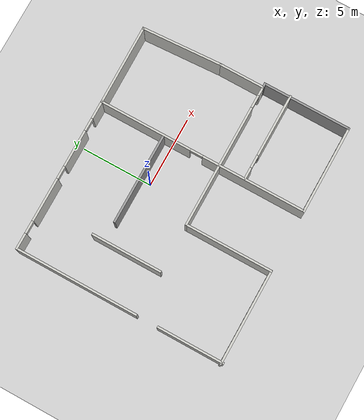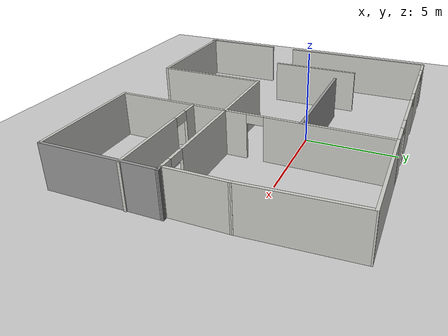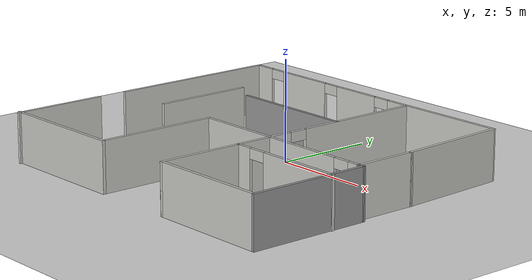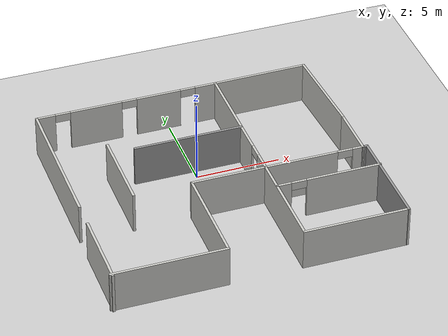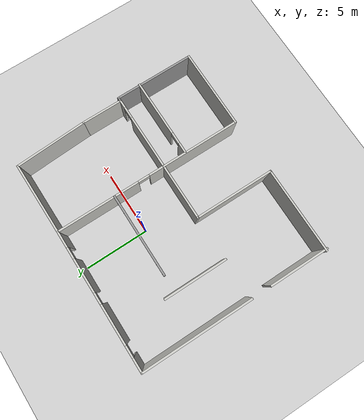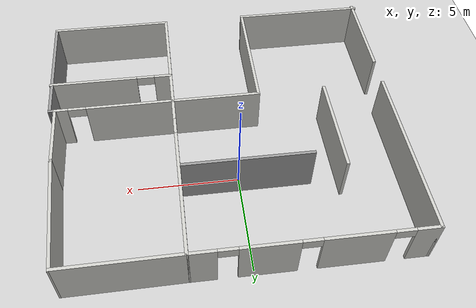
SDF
<sdf version="1.7">
 <world name="default">
  <model name="ground_plane">
   <static>1</static>
   <link name="link">
    <collision name="collision">
     <geometry><plane><normal>0 0 1</normal><size>100 100</size></plane></geometry>
     <surface><friction><ode><mu>100</mu><mu2>50</mu2></ode></friction></surface>
    </collision>
    <visual name="visual">
     <cast_shadows>0</cast_shadows>
     <geometry><plane><normal>0 0 1</normal><size>100 100</size></plane></geometry>
     <material>
      <script><uri>file://media/materials/scripts/gazebo.material</uri><name>Gazebo/Grey</name></script>
     </material>
    </visual>
   </link>
  </model>
  <model name="simworld12">
   <link name="Wall_11">
    <pose>4.02518 1.54652 0 0 0 -1.5708</pose>
    <visual name="Wall_11_Visual_0">
     <pose>-1.09189 0 1.25 0 -0 0</pose>
     <geometry><box><size>6.56622 0.15 2.5</size></box></geometry>
     <material>
      <script><uri>file://media/materials/scripts/gazebo.material</uri><name>Gazebo/CeilingTiled</name></script>
      <ambient>1 1 1 1</ambient>
      <shader type="pixel"/>
     </material>
     <meta><layer>0</layer></meta>
    </visual>
    <visual name="Wall_11_Visual_1">
     <pose>3.73311 0 1.25 0 -0 0</pose>
     <geometry><box><size>1.28378 0.15 2.5</size></box></geometry>
     <material>
      <script><uri>file://media/materials/scripts/gazebo.material</uri><name>Gazebo/CeilingTiled</name></script>
      <ambient>1 1 1 1</ambient>
      <shader type="pixel"/>
     </material>
     <meta><layer>0</layer></meta>
    </visual>
    <visual name="Wall_11_Visual_2">
     <pose>2.64122 0 2.25 0 -0 0</pose>
     <geometry><box><size>0.9 0.15 0.5</size></box></geometry>
     <material>
      <script><uri>file://media/materials/scripts/gazebo.material</uri><name>Gazebo/CeilingTiled</name></script>
      <ambient>1 1 1 1</ambient>
      <shader type="pixel"/>
     </material>
     <meta><layer>0</layer></meta>
    </visual>
    <collision name="Wall_11_Collision_0">
     <pose>-1.09189 0 1.25 0 -0 0</pose>
     <geometry><box><size>6.56622 0.15 2.5</size></box></geometry>
     <surface>
      <friction>
       <ode><mu>1</mu><mu2>1</mu2><fdir1>0 0 0</fdir1><slip1>0</slip1><slip2>0</slip2></ode>
       <torsional>
        <coefficient>1</coefficient>
        <patch_radius>0</patch_radius>
        <surface_radius>0</surface_radius>
        <use_patch_radius>1</use_patch_radius>
        <ode><slip>0</slip></ode>
       </torsional>
      </friction>
      <bounce><restitution_coefficient>0</restitution_coefficient><threshold>1e+06</threshold></bounce>
      <contact>
       <collide_without_contact>0</collide_without_contact>
       <collide_without_contact_bitmask>1</collide_without_contact_bitmask>
       <collide_bitmask>1</collide_bitmask>
       <ode>
        <soft_cfm>0</soft_cfm>
        <soft_erp>0.2</soft_erp>
        <kp>1e+13</kp>
        <kd>1</kd>
        <max_vel>0.01</max_vel>
        <min_depth>0</min_depth>
       </ode>
       <bullet>
        <split_impulse>1</split_impulse>
        <split_impulse_penetration_threshold>-0.01</split_impulse_penetration_threshold>
        <soft_cfm>0</soft_cfm>
        <soft_erp>0.2</soft_erp>
        <kp>1e+13</kp>
        <kd>1</kd>
       </bullet>
      </contact>
     </surface>
    </collision>
    <collision name="Wall_11_Collision_1">
     <pose>3.73311 0 1.25 0 -0 0</pose>
     <geometry><box><size>1.28378 0.15 2.5</size></box></geometry>
     <surface>
      <friction>
       <ode><mu>1</mu><mu2>1</mu2><fdir1>0 0 0</fdir1><slip1>0</slip1><slip2>0</slip2></ode>
       <torsional>
        <coefficient>1</coefficient>
        <patch_radius>0</patch_radius>
        <surface_radius>0</surface_radius>
        <use_patch_radius>1</use_patch_radius>
        <ode><slip>0</slip></ode>
       </torsional>
      </friction>
      <bounce><restitution_coefficient>0</restitution_coefficient><threshold>1e+06</threshold></bounce>
      <contact>
       <collide_without_contact>0</collide_without_contact>
       <collide_without_contact_bitmask>1</collide_without_contact_bitmask>
       <collide_bitmask>1</collide_bitmask>
       <ode>
        <soft_cfm>0</soft_cfm>
        <soft_erp>0.2</soft_erp>
        <kp>1e+13</kp>
        <kd>1</kd>
        <max_vel>0.01</max_vel>
        <min_depth>0</min_depth>
       </ode>
       <bullet>
        <split_impulse>1</split_impulse>
        <split_impulse_penetration_threshold>-0.01</split_impulse_penetration_threshold>
        <soft_cfm>0</soft_cfm>
        <soft_erp>0.2</soft_erp>
        <kp>1e+13</kp>
        <kd>1</kd>
       </bullet>
      </contact>
     </surface>
    </collision>
    <collision name="Wall_11_Collision_2">
     <pose>2.64122 0 2.25 0 -0 0</pose>
     <geometry><box><size>0.9 0.15 0.5</size></box></geometry>
     <surface>
      <friction>
       <ode><mu>1</mu><mu2>1</mu2><fdir1>0 0 0</fdir1><slip1>0</slip1><slip2>0</slip2></ode>
       <torsional>
        <coefficient>1</coefficient>
        <patch_radius>0</patch_radius>
        <surface_radius>0</surface_radius>
        <use_patch_radius>1</use_patch_radius>
        <ode><slip>0</slip></ode>
       </torsional>
      </friction>
      <bounce><restitution_coefficient>0</restitution_coefficient><threshold>1e+06</threshold></bounce>
      <contact>
       <collide_without_contact>0</collide_without_contact>
       <collide_without_contact_bitmask>1</collide_without_contact_bitmask>
       <collide_bitmask>1</collide_bitmask>
       <ode>
        <soft_cfm>0</soft_cfm>
        <soft_erp>0.2</soft_erp>
        <kp>1e+13</kp>
        <kd>1</kd>
        <max_vel>0.01</max_vel>
        <min_depth>0</min_depth>
       </ode>
       <bullet>
        <split_impulse>1</split_impulse>
        <split_impulse_penetration_threshold>-0.01</split_impulse_penetration_threshold>
        <soft_cfm>0</soft_cfm>
        <soft_erp>0.2</soft_erp>
        <kp>1e+13</kp>
        <kd>1</kd>
       </bullet>
      </contact>
     </surface>
    </collision>
   </link>
   <link name="Wall_13">
    <pose>1.85018 -2.75348 0 0 -0 3.14159</pose>
    <visual name="Wall_13_Visual">
     <pose>0 0 1.25 0 -0 0</pose>
     <geometry><box><size>4.5 0.15 2.5</size></box></geometry>
     <material>
      <script><uri>file://media/materials/scripts/gazebo.material</uri><name>Gazebo/CeilingTiled</name></script>
      <ambient>1 1 1 1</ambient>
      <shader type="pixel"/>
     </material>
     <meta><layer>0</layer></meta>
    </visual>
    <collision name="Wall_13_Collision">
     <pose>0 0 1.25 0 -0 0</pose>
     <geometry><box><size>4.5 0.15 2.5</size></box></geometry>
     <surface>
      <friction>
       <ode><mu>1</mu><mu2>1</mu2><fdir1>0 0 0</fdir1><slip1>0</slip1><slip2>0</slip2></ode>
       <torsional>
        <coefficient>1</coefficient>
        <patch_radius>0</patch_radius>
        <surface_radius>0</surface_radius>
        <use_patch_radius>1</use_patch_radius>
        <ode><slip>0</slip></ode>
       </torsional>
      </friction>
      <bounce><restitution_coefficient>0</restitution_coefficient><threshold>1e+06</threshold></bounce>
      <contact>
       <collide_without_contact>0</collide_without_contact>
       <collide_without_contact_bitmask>1</collide_without_contact_bitmask>
       <collide_bitmask>1</collide_bitmask>
       <ode>
        <soft_cfm>0</soft_cfm>
        <soft_erp>0.2</soft_erp>
        <kp>1e+13</kp>
        <kd>1</kd>
        <max_vel>0.01</max_vel>
        <min_depth>0</min_depth>
       </ode>
       <bullet>
        <split_impulse>1</split_impulse>
        <split_impulse_penetration_threshold>-0.01</split_impulse_penetration_threshold>
        <soft_cfm>0</soft_cfm>
        <soft_erp>0.2</soft_erp>
        <kp>1e+13</kp>
        <kd>1</kd>
       </bullet>
      </contact>
     </surface>
    </collision>
   </link>
   <link name="Wall_14">
    <pose>-0.324822 -5.80348 0 0 0 -1.5708</pose>
    <visual name="Wall_14_Visual">
     <pose>0 0 1.25 0 -0 0</pose>
     <geometry><box><size>6.25 0.15 2.5</size></box></geometry>
     <material>
      <script><uri>file://media/materials/scripts/gazebo.material</uri><name>Gazebo/CeilingTiled</name></script>
      <ambient>1 1 1 1</ambient>
      <shader type="pixel"/>
     </material>
     <meta><layer>0</layer></meta>
    </visual>
    <collision name="Wall_14_Collision">
     <pose>0 0 1.25 0 -0 0</pose>
     <geometry><box><size>6.25 0.15 2.5</size></box></geometry>
     <surface>
      <friction>
       <ode><mu>1</mu><mu2>1</mu2><fdir1>0 0 0</fdir1><slip1>0</slip1><slip2>0</slip2></ode>
       <torsional>
        <coefficient>1</coefficient>
        <patch_radius>0</patch_radius>
        <surface_radius>0</surface_radius>
        <use_patch_radius>1</use_patch_radius>
        <ode><slip>0</slip></ode>
       </torsional>
      </friction>
      <bounce><restitution_coefficient>0</restitution_coefficient><threshold>1e+06</threshold></bounce>
      <contact>
       <collide_without_contact>0</collide_without_contact>
       <collide_without_contact_bitmask>1</collide_without_contact_bitmask>
       <collide_bitmask>1</collide_bitmask>
       <ode>
        <soft_cfm>0</soft_cfm>
        <soft_erp>0.2</soft_erp>
        <kp>1e+13</kp>
        <kd>1</kd>
        <max_vel>0.01</max_vel>
        <min_depth>0</min_depth>
       </ode>
       <bullet>
        <split_impulse>1</split_impulse>
        <split_impulse_penetration_threshold>-0.01</split_impulse_penetration_threshold>
        <soft_cfm>0</soft_cfm>
        <soft_erp>0.2</soft_erp>
        <kp>1e+13</kp>
        <kd>1</kd>
       </bullet>
      </contact>
     </surface>
    </collision>
   </link>
   <link name="Wall_15">
    <pose>-3.62482 -8.85348 0 0 -0 3.14159</pose>
    <visual name="Wall_15_Visual">
     <pose>0 0 1.25 0 -0 0</pose>
     <geometry><box><size>6.75 0.15 2.5</size></box></geometry>
     <material>
      <script><uri>file://media/materials/scripts/gazebo.material</uri><name>Gazebo/CeilingTiled</name></script>
      <ambient>1 1 1 1</ambient>
      <shader type="pixel"/>
     </material>
     <meta><layer>0</layer></meta>
    </visual>
    <collision name="Wall_15_Collision">
     <pose>0 0 1.25 0 -0 0</pose>
     <geometry><box><size>6.75 0.15 2.5</size></box></geometry>
     <surface>
      <friction>
       <ode><mu>1</mu><mu2>1</mu2><fdir1>0 0 0</fdir1><slip1>0</slip1><slip2>0</slip2></ode>
       <torsional>
        <coefficient>1</coefficient>
        <patch_radius>0</patch_radius>
        <surface_radius>0</surface_radius>
        <use_patch_radius>1</use_patch_radius>
        <ode><slip>0</slip></ode>
       </torsional>
      </friction>
      <bounce><restitution_coefficient>0</restitution_coefficient><threshold>1e+06</threshold></bounce>
      <contact>
       <collide_without_contact>0</collide_without_contact>
       <collide_without_contact_bitmask>1</collide_without_contact_bitmask>
       <collide_bitmask>1</collide_bitmask>
       <ode>
        <soft_cfm>0</soft_cfm>
        <soft_erp>0.2</soft_erp>
        <kp>1e+13</kp>
        <kd>1</kd>
        <max_vel>0.01</max_vel>
        <min_depth>0</min_depth>
       </ode>
       <bullet>
        <split_impulse>1</split_impulse>
        <split_impulse_penetration_threshold>-0.01</split_impulse_penetration_threshold>
        <soft_cfm>0</soft_cfm>
        <soft_erp>0.2</soft_erp>
        <kp>1e+13</kp>
        <kd>1</kd>
       </bullet>
      </contact>
     </surface>
    </collision>
   </link>
   <link name="Wall_18">
    <pose>-3.72482 -0.32848 0 0 -0 1.5708</pose>
    <visual name="Wall_18_Visual">
     <pose>0 0 1.25 0 -0 0</pose>
     <geometry><box><size>5 0.15 2.5</size></box></geometry>
     <material>
      <script><uri>file://media/materials/scripts/gazebo.material</uri><name>Gazebo/CeilingTiled</name></script>
      <ambient>1 1 1 1</ambient>
      <shader type="pixel"/>
     </material>
     <meta><layer>0</layer></meta>
    </visual>
    <collision name="Wall_18_Collision">
     <pose>0 0 1.25 0 -0 0</pose>
     <geometry><box><size>5 0.15 2.5</size></box></geometry>
     <surface>
      <friction>
       <ode><mu>1</mu><mu2>1</mu2><fdir1>0 0 0</fdir1><slip1>0</slip1><slip2>0</slip2></ode>
       <torsional>
        <coefficient>1</coefficient>
        <patch_radius>0</patch_radius>
        <surface_radius>0</surface_radius>
        <use_patch_radius>1</use_patch_radius>
        <ode><slip>0</slip></ode>
       </torsional>
      </friction>
      <bounce><restitution_coefficient>0</restitution_coefficient><threshold>1e+06</threshold></bounce>
      <contact>
       <collide_without_contact>0</collide_without_contact>
       <collide_without_contact_bitmask>1</collide_without_contact_bitmask>
       <collide_bitmask>1</collide_bitmask>
       <ode>
        <soft_cfm>0</soft_cfm>
        <soft_erp>0.2</soft_erp>
        <kp>1e+13</kp>
        <kd>1</kd>
        <max_vel>0.01</max_vel>
        <min_depth>0</min_depth>
       </ode>
       <bullet>
        <split_impulse>1</split_impulse>
        <split_impulse_penetration_threshold>-0.01</split_impulse_penetration_threshold>
        <soft_cfm>0</soft_cfm>
        <soft_erp>0.2</soft_erp>
        <kp>1e+13</kp>
        <kd>1</kd>
       </bullet>
      </contact>
     </surface>
    </collision>
   </link>
   <link name="Wall_21">
    <pose>0.835818 1.29652 0 0 -0 0</pose>
    <visual name="Wall_21_Visual">
     <pose>0 0 1.25 0 -0 0</pose>
     <geometry><box><size>6.5 0.15 2.5</size></box></geometry>
     <material>
      <script><uri>file://media/materials/scripts/gazebo.material</uri><name>Gazebo/Grey</name></script>
      <ambient>1 1 1 1</ambient>
      <shader type="pixel"/>
     </material>
     <meta><layer>0</layer></meta>
    </visual>
    <collision name="Wall_21_Collision">
     <pose>0 0 1.25 0 -0 0</pose>
     <geometry><box><size>6.5 0.15 2.5</size></box></geometry>
     <surface>
      <friction>
       <ode><mu>1</mu><mu2>1</mu2><fdir1>0 0 0</fdir1><slip1>0</slip1><slip2>0</slip2></ode>
       <torsional>
        <coefficient>1</coefficient>
        <patch_radius>0</patch_radius>
        <surface_radius>0</surface_radius>
        <use_patch_radius>1</use_patch_radius>
        <ode><slip>0</slip></ode>
       </torsional>
      </friction>
      <bounce><restitution_coefficient>0</restitution_coefficient><threshold>1e+06</threshold></bounce>
      <contact>
       <collide_without_contact>0</collide_without_contact>
       <collide_without_contact_bitmask>1</collide_without_contact_bitmask>
       <collide_bitmask>1</collide_bitmask>
       <ode>
        <soft_cfm>0</soft_cfm>
        <soft_erp>0.2</soft_erp>
        <kp>1e+13</kp>
        <kd>1</kd>
        <max_vel>0.01</max_vel>
        <min_depth>0</min_depth>
       </ode>
       <bullet>
        <split_impulse>1</split_impulse>
        <split_impulse_penetration_threshold>-0.01</split_impulse_penetration_threshold>
        <soft_cfm>0</soft_cfm>
        <soft_erp>0.2</soft_erp>
        <kp>1e+13</kp>
        <kd>1</kd>
       </bullet>
      </contact>
     </surface>
    </collision>
   </link>
   <link name="Wall_24">
    <pose>9.87294 -1.20609 0 0 0 -1.5708</pose>
    <visual name="Wall_24_Visual">
     <pose>0 0 1.25 0 -0 0</pose>
     <geometry><box><size>3.25 0.15 2.5</size></box></geometry>
     <material>
      <script><uri>file://media/materials/scripts/gazebo.material</uri><name>Gazebo/CeilingTiled</name></script>
      <ambient>1 1 1 1</ambient>
      <shader type="pixel"/>
     </material>
     <meta><layer>0</layer></meta>
    </visual>
    <collision name="Wall_24_Collision">
     <pose>0 0 1.25 0 -0 0</pose>
     <geometry><box><size>3.25 0.15 2.5</size></box></geometry>
     <surface>
      <friction>
       <ode><mu>1</mu><mu2>1</mu2><fdir1>0 0 0</fdir1><slip1>0</slip1><slip2>0</slip2></ode>
       <torsional>
        <coefficient>1</coefficient>
        <patch_radius>0</patch_radius>
        <surface_radius>0</surface_radius>
        <use_patch_radius>1</use_patch_radius>
        <ode><slip>0</slip></ode>
       </torsional>
      </friction>
      <bounce><restitution_coefficient>0</restitution_coefficient><threshold>1e+06</threshold></bounce>
      <contact>
       <collide_without_contact>0</collide_without_contact>
       <collide_without_contact_bitmask>1</collide_without_contact_bitmask>
       <collide_bitmask>1</collide_bitmask>
       <ode>
        <soft_cfm>0</soft_cfm>
        <soft_erp>0.2</soft_erp>
        <kp>1e+13</kp>
        <kd>1</kd>
        <max_vel>0.01</max_vel>
        <min_depth>0</min_depth>
       </ode>
       <bullet>
        <split_impulse>1</split_impulse>
        <split_impulse_penetration_threshold>-0.01</split_impulse_penetration_threshold>
        <soft_cfm>0</soft_cfm>
        <soft_erp>0.2</soft_erp>
        <kp>1e+13</kp>
        <kd>1</kd>
       </bullet>
      </contact>
     </surface>
    </collision>
   </link>
   <link name="Wall_25">
    <pose>6.94906 -2.75479 0 0 -0 3.14115</pose>
    <visual name="Wall_25_Visual_0">
     <pose>-2.64457 0 1.25 0 -0 0</pose>
     <geometry><box><size>0.708624 0.15 2.5</size></box></geometry>
     <material>
      <script><uri>file://media/materials/scripts/gazebo.material</uri><name>Gazebo/CeilingTiled</name></script>
      <ambient>1 1 1 1</ambient>
      <shader type="pixel"/>
     </material>
     <meta><layer>0</layer></meta>
    </visual>
    <visual name="Wall_25_Visual_1">
     <pose>0.804312 0 1.25 0 -0 0</pose>
     <geometry><box><size>4.38914 0.15 2.5</size></box></geometry>
     <material>
      <script><uri>file://media/materials/scripts/gazebo.material</uri><name>Gazebo/CeilingTiled</name></script>
      <ambient>1 1 1 1</ambient>
      <shader type="pixel"/>
     </material>
     <meta><layer>0</layer></meta>
    </visual>
    <visual name="Wall_25_Visual_2">
     <pose>-1.84026 0 2.25 0 -0 0</pose>
     <geometry><box><size>0.9 0.15 0.5</size></box></geometry>
     <material>
      <script><uri>file://media/materials/scripts/gazebo.material</uri><name>Gazebo/CeilingTiled</name></script>
      <ambient>1 1 1 1</ambient>
      <shader type="pixel"/>
     </material>
     <meta><layer>0</layer></meta>
    </visual>
    <collision name="Wall_25_Collision_0">
     <pose>-2.64457 0 1.25 0 -0 0</pose>
     <geometry><box><size>0.708624 0.15 2.5</size></box></geometry>
     <surface>
      <friction>
       <ode><mu>1</mu><mu2>1</mu2><fdir1>0 0 0</fdir1><slip1>0</slip1><slip2>0</slip2></ode>
       <torsional>
        <coefficient>1</coefficient>
        <patch_radius>0</patch_radius>
        <surface_radius>0</surface_radius>
        <use_patch_radius>1</use_patch_radius>
        <ode><slip>0</slip></ode>
       </torsional>
      </friction>
      <bounce><restitution_coefficient>0</restitution_coefficient><threshold>1e+06</threshold></bounce>
      <contact>
       <collide_without_contact>0</collide_without_contact>
       <collide_without_contact_bitmask>1</collide_without_contact_bitmask>
       <collide_bitmask>1</collide_bitmask>
       <ode>
        <soft_cfm>0</soft_cfm>
        <soft_erp>0.2</soft_erp>
        <kp>1e+13</kp>
        <kd>1</kd>
        <max_vel>0.01</max_vel>
        <min_depth>0</min_depth>
       </ode>
       <bullet>
        <split_impulse>1</split_impulse>
        <split_impulse_penetration_threshold>-0.01</split_impulse_penetration_threshold>
        <soft_cfm>0</soft_cfm>
        <soft_erp>0.2</soft_erp>
        <kp>1e+13</kp>
        <kd>1</kd>
       </bullet>
      </contact>
     </surface>
    </collision>
    <collision name="Wall_25_Collision_1">
     <pose>0.804312 0 1.25 0 -0 0</pose>
     <geometry><box><size>4.38914 0.15 2.5</size></box></geometry>
     <surface>
      <friction>
       <ode><mu>1</mu><mu2>1</mu2><fdir1>0 0 0</fdir1><slip1>0</slip1><slip2>0</slip2></ode>
       <torsional>
        <coefficient>1</coefficient>
        <patch_radius>0</patch_radius>
        <surface_radius>0</surface_radius>
        <use_patch_radius>1</use_patch_radius>
        <ode><slip>0</slip></ode>
       </torsional>
      </friction>
      <bounce><restitution_coefficient>0</restitution_coefficient><threshold>1e+06</threshold></bounce>
      <contact>
       <collide_without_contact>0</collide_without_contact>
       <collide_without_contact_bitmask>1</collide_without_contact_bitmask>
       <collide_bitmask>1</collide_bitmask>
       <ode>
        <soft_cfm>0</soft_cfm>
        <soft_erp>0.2</soft_erp>
        <kp>1e+13</kp>
        <kd>1</kd>
        <max_vel>0.01</max_vel>
        <min_depth>0</min_depth>
       </ode>
       <bullet>
        <split_impulse>1</split_impulse>
        <split_impulse_penetration_threshold>-0.01</split_impulse_penetration_threshold>
        <soft_cfm>0</soft_cfm>
        <soft_erp>0.2</soft_erp>
        <kp>1e+13</kp>
        <kd>1</kd>
       </bullet>
      </contact>
     </surface>
    </collision>
    <collision name="Wall_25_Collision_2">
     <pose>-1.84026 0 2.25 0 -0 0</pose>
     <geometry><box><size>0.9 0.15 0.5</size></box></geometry>
     <surface>
      <friction>
       <ode><mu>1</mu><mu2>1</mu2><fdir1>0 0 0</fdir1><slip1>0</slip1><slip2>0</slip2></ode>
       <torsional>
        <coefficient>1</coefficient>
        <patch_radius>0</patch_radius>
        <surface_radius>0</surface_radius>
        <use_patch_radius>1</use_patch_radius>
        <ode><slip>0</slip></ode>
       </torsional>
      </friction>
      <bounce><restitution_coefficient>0</restitution_coefficient><threshold>1e+06</threshold></bounce>
      <contact>
       <collide_without_contact>0</collide_without_contact>
       <collide_without_contact_bitmask>1</collide_without_contact_bitmask>
       <collide_bitmask>1</collide_bitmask>
       <ode>
        <soft_cfm>0</soft_cfm>
        <soft_erp>0.2</soft_erp>
        <kp>1e+13</kp>
        <kd>1</kd>
        <max_vel>0.01</max_vel>
        <min_depth>0</min_depth>
       </ode>
       <bullet>
        <split_impulse>1</split_impulse>
        <split_impulse_penetration_threshold>-0.01</split_impulse_penetration_threshold>
        <soft_cfm>0</soft_cfm>
        <soft_erp>0.2</soft_erp>
        <kp>1e+13</kp>
        <kd>1</kd>
       </bullet>
      </contact>
     </surface>
    </collision>
   </link>
   <link name="Wall_26">
    <pose>4.02518 -5.80348 0 0 0 -1.5708</pose>
    <visual name="Wall_26_Visual">
     <pose>0 0 1.25 0 -0 0</pose>
     <geometry><box><size>6.25 0.15 2.5</size></box></geometry>
     <material>
      <script><uri>file://media/materials/scripts/gazebo.material</uri><name>Gazebo/CeilingTiled</name></script>
      <ambient>1 1 1 1</ambient>
      <shader type="pixel"/>
     </material>
     <meta><layer>0</layer></meta>
    </visual>
    <collision name="Wall_26_Collision">
     <pose>0 0 1.25 0 -0 0</pose>
     <geometry><box><size>6.25 0.15 2.5</size></box></geometry>
     <surface>
      <friction>
       <ode><mu>1</mu><mu2>1</mu2><fdir1>0 0 0</fdir1><slip1>0</slip1><slip2>0</slip2></ode>
       <torsional>
        <coefficient>1</coefficient>
        <patch_radius>0</patch_radius>
        <surface_radius>0</surface_radius>
        <use_patch_radius>1</use_patch_radius>
        <ode><slip>0</slip></ode>
       </torsional>
      </friction>
      <bounce><restitution_coefficient>0</restitution_coefficient><threshold>1e+06</threshold></bounce>
      <contact>
       <collide_without_contact>0</collide_without_contact>
       <collide_without_contact_bitmask>1</collide_without_contact_bitmask>
       <collide_bitmask>1</collide_bitmask>
       <ode>
        <soft_cfm>0</soft_cfm>
        <soft_erp>0.2</soft_erp>
        <kp>1e+13</kp>
        <kd>1</kd>
        <max_vel>0.01</max_vel>
        <min_depth>0</min_depth>
       </ode>
       <bullet>
        <split_impulse>1</split_impulse>
        <split_impulse_penetration_threshold>-0.01</split_impulse_penetration_threshold>
        <soft_cfm>0</soft_cfm>
        <soft_erp>0.2</soft_erp>
        <kp>1e+13</kp>
        <kd>1</kd>
       </bullet>
      </contact>
     </surface>
    </collision>
   </link>
   <link name="Wall_27">
    <pose>7.07518 -8.85348 0 0 -0 0</pose>
    <visual name="Wall_27_Visual">
     <pose>0 0 1.25 0 -0 0</pose>
     <geometry><box><size>6.25 0.15 2.5</size></box></geometry>
     <material>
      <script><uri>file://media/materials/scripts/gazebo.material</uri><name>Gazebo/CeilingTiled</name></script>
      <ambient>1 1 1 1</ambient>
      <shader type="pixel"/>
     </material>
     <meta><layer>0</layer></meta>
    </visual>
    <collision name="Wall_27_Collision">
     <pose>0 0 1.25 0 -0 0</pose>
     <geometry><box><size>6.25 0.15 2.5</size></box></geometry>
     <surface>
      <friction>
       <ode><mu>1</mu><mu2>1</mu2><fdir1>0 0 0</fdir1><slip1>0</slip1><slip2>0</slip2></ode>
       <torsional>
        <coefficient>1</coefficient>
        <patch_radius>0</patch_radius>
        <surface_radius>0</surface_radius>
        <use_patch_radius>1</use_patch_radius>
        <ode><slip>0</slip></ode>
       </torsional>
      </friction>
      <bounce><restitution_coefficient>0</restitution_coefficient><threshold>1e+06</threshold></bounce>
      <contact>
       <collide_without_contact>0</collide_without_contact>
       <collide_without_contact_bitmask>1</collide_without_contact_bitmask>
       <collide_bitmask>1</collide_bitmask>
       <ode>
        <soft_cfm>0</soft_cfm>
        <soft_erp>0.2</soft_erp>
        <kp>1e+13</kp>
        <kd>1</kd>
        <max_vel>0.01</max_vel>
        <min_depth>0</min_depth>
       </ode>
       <bullet>
        <split_impulse>1</split_impulse>
        <split_impulse_penetration_threshold>-0.01</split_impulse_penetration_threshold>
        <soft_cfm>0</soft_cfm>
        <soft_erp>0.2</soft_erp>
        <kp>1e+13</kp>
        <kd>1</kd>
       </bullet>
      </contact>
     </surface>
    </collision>
   </link>
   <link name="Wall_28">
    <pose>10.1252 -5.80348 0 0 -0 1.5708</pose>
    <visual name="Wall_28_Visual">
     <pose>0 0 1.25 0 -0 0</pose>
     <geometry><box><size>6.25 0.15 2.5</size></box></geometry>
     <material>
      <script><uri>file://media/materials/scripts/gazebo.material</uri><name>Gazebo/Grey</name></script>
      <ambient>1 1 1 1</ambient>
      <shader type="pixel"/>
     </material>
     <meta><layer>0</layer></meta>
    </visual>
    <collision name="Wall_28_Collision">
     <pose>0 0 1.25 0 -0 0</pose>
     <geometry><box><size>6.25 0.15 2.5</size></box></geometry>
     <surface>
      <friction>
       <ode><mu>1</mu><mu2>1</mu2><fdir1>0 0 0</fdir1><slip1>0</slip1><slip2>0</slip2></ode>
       <torsional>
        <coefficient>1</coefficient>
        <patch_radius>0</patch_radius>
        <surface_radius>0</surface_radius>
        <use_patch_radius>1</use_patch_radius>
        <ode><slip>0</slip></ode>
       </torsional>
      </friction>
      <bounce><restitution_coefficient>0</restitution_coefficient><threshold>1e+06</threshold></bounce>
      <contact>
       <collide_without_contact>0</collide_without_contact>
       <collide_without_contact_bitmask>1</collide_without_contact_bitmask>
       <collide_bitmask>1</collide_bitmask>
       <ode>
        <soft_cfm>0</soft_cfm>
        <soft_erp>0.2</soft_erp>
        <kp>1e+13</kp>
        <kd>1</kd>
        <max_vel>0.01</max_vel>
        <min_depth>0</min_depth>
       </ode>
       <bullet>
        <split_impulse>1</split_impulse>
        <split_impulse_penetration_threshold>-0.01</split_impulse_penetration_threshold>
        <soft_cfm>0</soft_cfm>
        <soft_erp>0.2</soft_erp>
        <kp>1e+13</kp>
        <kd>1</kd>
       </bullet>
      </contact>
     </surface>
    </collision>
   </link>
   <link name="Wall_29">
    <pose>9.99906 -2.75479 0 0 0 -3.13125</pose>
    <visual name="Wall_29_Visual">
     <pose>0 0 1.25 0 -0 0</pose>
     <geometry><box><size>0.402248 0.15 2.5</size></box></geometry>
     <material>
      <script><uri>file://media/materials/scripts/gazebo.material</uri><name>Gazebo/Grey</name></script>
      <ambient>1 1 1 1</ambient>
      <shader type="pixel"/>
     </material>
     <meta><layer>0</layer></meta>
    </visual>
    <collision name="Wall_29_Collision">
     <pose>0 0 1.25 0 -0 0</pose>
     <geometry><box><size>0.402248 0.15 2.5</size></box></geometry>
     <surface>
      <friction>
       <ode><mu>1</mu><mu2>1</mu2><fdir1>0 0 0</fdir1><slip1>0</slip1><slip2>0</slip2></ode>
       <torsional>
        <coefficient>1</coefficient>
        <patch_radius>0</patch_radius>
        <surface_radius>0</surface_radius>
        <use_patch_radius>1</use_patch_radius>
        <ode><slip>0</slip></ode>
       </torsional>
      </friction>
      <bounce><restitution_coefficient>0</restitution_coefficient><threshold>1e+06</threshold></bounce>
      <contact>
       <collide_without_contact>0</collide_without_contact>
       <collide_without_contact_bitmask>1</collide_without_contact_bitmask>
       <collide_bitmask>1</collide_bitmask>
       <ode>
        <soft_cfm>0</soft_cfm>
        <soft_erp>0.2</soft_erp>
        <kp>1e+13</kp>
        <kd>1</kd>
        <max_vel>0.01</max_vel>
        <min_depth>0</min_depth>
       </ode>
       <bullet>
        <split_impulse>1</split_impulse>
        <split_impulse_penetration_threshold>-0.01</split_impulse_penetration_threshold>
        <soft_cfm>0</soft_cfm>
        <soft_erp>0.2</soft_erp>
        <kp>1e+13</kp>
        <kd>1</kd>
       </bullet>
      </contact>
     </surface>
    </collision>
   </link>
   <link name="Wall_3">
    <pose>-6.82482 -6.65348 0 0 -0 1.5708</pose>
    <visual name="Wall_3_Visual">
     <pose>0 0 1.25 0 -0 0</pose>
     <geometry><box><size>4.75 0.15 2.5</size></box></geometry>
     <material>
      <script><uri>file://media/materials/scripts/gazebo.material</uri><name>Gazebo/CeilingTiled</name></script>
      <ambient>1 1 1 1</ambient>
      <shader type="pixel"/>
     </material>
     <meta><layer>0</layer></meta>
    </visual>
    <collision name="Wall_3_Collision">
     <pose>0 0 1.25 0 -0 0</pose>
     <geometry><box><size>4.75 0.15 2.5</size></box></geometry>
     <surface>
      <friction>
       <ode><mu>1</mu><mu2>1</mu2><fdir1>0 0 0</fdir1><slip1>0</slip1><slip2>0</slip2></ode>
       <torsional>
        <coefficient>1</coefficient>
        <patch_radius>0</patch_radius>
        <surface_radius>0</surface_radius>
        <use_patch_radius>1</use_patch_radius>
        <ode><slip>0</slip></ode>
       </torsional>
      </friction>
      <bounce><restitution_coefficient>0</restitution_coefficient><threshold>1e+06</threshold></bounce>
      <contact>
       <collide_without_contact>0</collide_without_contact>
       <collide_without_contact_bitmask>1</collide_without_contact_bitmask>
       <collide_bitmask>1</collide_bitmask>
       <ode>
        <soft_cfm>0</soft_cfm>
        <soft_erp>0.2</soft_erp>
        <kp>1e+13</kp>
        <kd>1</kd>
        <max_vel>0.01</max_vel>
        <min_depth>0</min_depth>
       </ode>
       <bullet>
        <split_impulse>1</split_impulse>
        <split_impulse_penetration_threshold>-0.01</split_impulse_penetration_threshold>
        <soft_cfm>0</soft_cfm>
        <soft_erp>0.2</soft_erp>
        <kp>1e+13</kp>
        <kd>1</kd>
       </bullet>
      </contact>
     </surface>
    </collision>
   </link>
   <link name="Wall_33">
    <pose>7.12482 -4.58462 0 0 -0 0</pose>
    <visual name="Wall_33_Visual_0">
     <pose>-2.68766 0 1.25 0 -0 0</pose>
     <geometry><box><size>0.874678 0.15 2.5</size></box></geometry>
     <material>
      <script><uri>file://media/materials/scripts/gazebo.material</uri><name>Gazebo/CeilingTiled</name></script>
      <ambient>1 1 1 1</ambient>
      <shader type="pixel"/>
     </material>
     <meta><layer>0</layer></meta>
    </visual>
    <visual name="Wall_33_Visual_1">
     <pose>0.887339 0 1.25 0 -0 0</pose>
     <geometry><box><size>4.47532 0.15 2.5</size></box></geometry>
     <material>
      <script><uri>file://media/materials/scripts/gazebo.material</uri><name>Gazebo/CeilingTiled</name></script>
      <ambient>1 1 1 1</ambient>
      <shader type="pixel"/>
     </material>
     <meta><layer>0</layer></meta>
    </visual>
    <visual name="Wall_33_Visual_2">
     <pose>-1.80032 0 2.25 0 -0 0</pose>
     <geometry><box><size>0.9 0.15 0.5</size></box></geometry>
     <material>
      <script><uri>file://media/materials/scripts/gazebo.material</uri><name>Gazebo/CeilingTiled</name></script>
      <ambient>1 1 1 1</ambient>
      <shader type="pixel"/>
     </material>
     <meta><layer>0</layer></meta>
    </visual>
    <collision name="Wall_33_Collision_0">
     <pose>-2.68766 0 1.25 0 -0 0</pose>
     <geometry><box><size>0.874678 0.15 2.5</size></box></geometry>
     <surface>
      <friction>
       <ode><mu>1</mu><mu2>1</mu2><fdir1>0 0 0</fdir1><slip1>0</slip1><slip2>0</slip2></ode>
       <torsional>
        <coefficient>1</coefficient>
        <patch_radius>0</patch_radius>
        <surface_radius>0</surface_radius>
        <use_patch_radius>1</use_patch_radius>
        <ode><slip>0</slip></ode>
       </torsional>
      </friction>
      <bounce><restitution_coefficient>0</restitution_coefficient><threshold>1e+06</threshold></bounce>
      <contact>
       <collide_without_contact>0</collide_without_contact>
       <collide_without_contact_bitmask>1</collide_without_contact_bitmask>
       <collide_bitmask>1</collide_bitmask>
       <ode>
        <soft_cfm>0</soft_cfm>
        <soft_erp>0.2</soft_erp>
        <kp>1e+13</kp>
        <kd>1</kd>
        <max_vel>0.01</max_vel>
        <min_depth>0</min_depth>
       </ode>
       <bullet>
        <split_impulse>1</split_impulse>
        <split_impulse_penetration_threshold>-0.01</split_impulse_penetration_threshold>
        <soft_cfm>0</soft_cfm>
        <soft_erp>0.2</soft_erp>
        <kp>1e+13</kp>
        <kd>1</kd>
       </bullet>
      </contact>
     </surface>
    </collision>
    <collision name="Wall_33_Collision_1">
     <pose>0.887339 0 1.25 0 -0 0</pose>
     <geometry><box><size>4.47532 0.15 2.5</size></box></geometry>
     <surface>
      <friction>
       <ode><mu>1</mu><mu2>1</mu2><fdir1>0 0 0</fdir1><slip1>0</slip1><slip2>0</slip2></ode>
       <torsional>
        <coefficient>1</coefficient>
        <patch_radius>0</patch_radius>
        <surface_radius>0</surface_radius>
        <use_patch_radius>1</use_patch_radius>
        <ode><slip>0</slip></ode>
       </torsional>
      </friction>
      <bounce><restitution_coefficient>0</restitution_coefficient><threshold>1e+06</threshold></bounce>
      <contact>
       <collide_without_contact>0</collide_without_contact>
       <collide_without_contact_bitmask>1</collide_without_contact_bitmask>
       <collide_bitmask>1</collide_bitmask>
       <ode>
        <soft_cfm>0</soft_cfm>
        <soft_erp>0.2</soft_erp>
        <kp>1e+13</kp>
        <kd>1</kd>
        <max_vel>0.01</max_vel>
        <min_depth>0</min_depth>
       </ode>
       <bullet>
        <split_impulse>1</split_impulse>
        <split_impulse_penetration_threshold>-0.01</split_impulse_penetration_threshold>
        <soft_cfm>0</soft_cfm>
        <soft_erp>0.2</soft_erp>
        <kp>1e+13</kp>
        <kd>1</kd>
       </bullet>
      </contact>
     </surface>
    </collision>
    <collision name="Wall_33_Collision_2">
     <pose>-1.80032 0 2.25 0 -0 0</pose>
     <geometry><box><size>0.9 0.15 0.5</size></box></geometry>
     <surface>
      <friction>
       <ode><mu>1</mu><mu2>1</mu2><fdir1>0 0 0</fdir1><slip1>0</slip1><slip2>0</slip2></ode>
       <torsional>
        <coefficient>1</coefficient>
        <patch_radius>0</patch_radius>
        <surface_radius>0</surface_radius>
        <use_patch_radius>1</use_patch_radius>
        <ode><slip>0</slip></ode>
       </torsional>
      </friction>
      <bounce><restitution_coefficient>0</restitution_coefficient><threshold>1e+06</threshold></bounce>
      <contact>
       <collide_without_contact>0</collide_without_contact>
       <collide_without_contact_bitmask>1</collide_without_contact_bitmask>
       <collide_bitmask>1</collide_bitmask>
       <ode>
        <soft_cfm>0</soft_cfm>
        <soft_erp>0.2</soft_erp>
        <kp>1e+13</kp>
        <kd>1</kd>
        <max_vel>0.01</max_vel>
        <min_depth>0</min_depth>
       </ode>
       <bullet>
        <split_impulse>1</split_impulse>
        <split_impulse_penetration_threshold>-0.01</split_impulse_penetration_threshold>
        <soft_cfm>0</soft_cfm>
        <soft_erp>0.2</soft_erp>
        <kp>1e+13</kp>
        <kd>1</kd>
       </bullet>
      </contact>
     </surface>
    </collision>
   </link>
   <link name="Wall_36">
    <pose>6.79946 5.87061 0 0 0 -3.13291</pose>
    <visual name="Wall_36_Visual">
     <pose>0 0 1.25 0 -0 0</pose>
     <geometry><box><size>5.69876 0.15 2.5</size></box></geometry>
     <material>
      <script><uri>file://media/materials/scripts/gazebo.material</uri><name>Gazebo/CeilingTiled</name></script>
      <ambient>1 1 1 1</ambient>
      <shader type="pixel"/>
     </material>
     <meta><layer>0</layer></meta>
    </visual>
    <collision name="Wall_36_Collision">
     <pose>0 0 1.25 0 -0 0</pose>
     <geometry><box><size>5.69876 0.15 2.5</size></box></geometry>
     <surface>
      <friction>
       <ode><mu>1</mu><mu2>1</mu2><fdir1>0 0 0</fdir1><slip1>0</slip1><slip2>0</slip2></ode>
       <torsional>
        <coefficient>1</coefficient>
        <patch_radius>0</patch_radius>
        <surface_radius>0</surface_radius>
        <use_patch_radius>1</use_patch_radius>
        <ode><slip>0</slip></ode>
       </torsional>
      </friction>
      <bounce><restitution_coefficient>0</restitution_coefficient><threshold>1e+06</threshold></bounce>
      <contact>
       <collide_without_contact>0</collide_without_contact>
       <collide_without_contact_bitmask>1</collide_without_contact_bitmask>
       <collide_bitmask>1</collide_bitmask>
       <ode>
        <soft_cfm>0</soft_cfm>
        <soft_erp>0.2</soft_erp>
        <kp>1e+13</kp>
        <kd>1</kd>
        <max_vel>0.01</max_vel>
        <min_depth>0</min_depth>
       </ode>
       <bullet>
        <split_impulse>1</split_impulse>
        <split_impulse_penetration_threshold>-0.01</split_impulse_penetration_threshold>
        <soft_cfm>0</soft_cfm>
        <soft_erp>0.2</soft_erp>
        <kp>1e+13</kp>
        <kd>1</kd>
       </bullet>
      </contact>
     </surface>
    </collision>
   </link>
   <link name="Wall_38">
    <pose>9.72334 3.1193 0 0 0 -1.51694</pose>
    <visual name="Wall_38_Visual">
     <pose>0 0 1.25 0 -0 0</pose>
     <geometry><box><size>5.70885 0.15 2.5</size></box></geometry>
     <material>
      <script><uri>file://media/materials/scripts/gazebo.material</uri><name>Gazebo/CeilingTiled</name></script>
      <ambient>1 1 1 1</ambient>
      <shader type="pixel"/>
     </material>
     <meta><layer>0</layer></meta>
    </visual>
    <collision name="Wall_38_Collision">
     <pose>0 0 1.25 0 -0 0</pose>
     <geometry><box><size>5.70885 0.15 2.5</size></box></geometry>
     <surface>
      <friction>
       <ode><mu>1</mu><mu2>1</mu2><fdir1>0 0 0</fdir1><slip1>0</slip1><slip2>0</slip2></ode>
       <torsional>
        <coefficient>1</coefficient>
        <patch_radius>0</patch_radius>
        <surface_radius>0</surface_radius>
        <use_patch_radius>1</use_patch_radius>
        <ode><slip>0</slip></ode>
       </torsional>
      </friction>
      <bounce><restitution_coefficient>0</restitution_coefficient><threshold>1e+06</threshold></bounce>
      <contact>
       <collide_without_contact>0</collide_without_contact>
       <collide_without_contact_bitmask>1</collide_without_contact_bitmask>
       <collide_bitmask>1</collide_bitmask>
       <ode>
        <soft_cfm>0</soft_cfm>
        <soft_erp>0.2</soft_erp>
        <kp>1e+13</kp>
        <kd>1</kd>
        <max_vel>0.01</max_vel>
        <min_depth>0</min_depth>
       </ode>
       <bullet>
        <split_impulse>1</split_impulse>
        <split_impulse_penetration_threshold>-0.01</split_impulse_penetration_threshold>
        <soft_cfm>0</soft_cfm>
        <soft_erp>0.2</soft_erp>
        <kp>1e+13</kp>
        <kd>1</kd>
       </bullet>
      </contact>
     </surface>
    </collision>
   </link>
   <link name="Wall_7">
    <pose>-6.82482 1.54652 0 0 -0 1.5708</pose>
    <visual name="Wall_7_Visual">
     <pose>0 0 1.25 0 -0 0</pose>
     <geometry><box><size>8.75 0.15 2.5</size></box></geometry>
     <material>
      <script><uri>file://media/materials/scripts/gazebo.material</uri><name>Gazebo/CeilingTiled</name></script>
      <ambient>1 1 1 1</ambient>
      <shader type="pixel"/>
     </material>
     <meta><layer>0</layer></meta>
    </visual>
    <collision name="Wall_7_Collision">
     <pose>0 0 1.25 0 -0 0</pose>
     <geometry><box><size>8.75 0.15 2.5</size></box></geometry>
     <surface>
      <friction>
       <ode><mu>1</mu><mu2>1</mu2><fdir1>0 0 0</fdir1><slip1>0</slip1><slip2>0</slip2></ode>
       <torsional>
        <coefficient>1</coefficient>
        <patch_radius>0</patch_radius>
        <surface_radius>0</surface_radius>
        <use_patch_radius>1</use_patch_radius>
        <ode><slip>0</slip></ode>
       </torsional>
      </friction>
      <bounce><restitution_coefficient>0</restitution_coefficient><threshold>1e+06</threshold></bounce>
      <contact>
       <collide_without_contact>0</collide_without_contact>
       <collide_without_contact_bitmask>1</collide_without_contact_bitmask>
       <collide_bitmask>1</collide_bitmask>
       <ode>
        <soft_cfm>0</soft_cfm>
        <soft_erp>0.2</soft_erp>
        <kp>1e+13</kp>
        <kd>1</kd>
        <max_vel>0.01</max_vel>
        <min_depth>0</min_depth>
       </ode>
       <bullet>
        <split_impulse>1</split_impulse>
        <split_impulse_penetration_threshold>-0.01</split_impulse_penetration_threshold>
        <soft_cfm>0</soft_cfm>
        <soft_erp>0.2</soft_erp>
        <kp>1e+13</kp>
        <kd>1</kd>
       </bullet>
      </contact>
     </surface>
    </collision>
   </link>
   <link name="Wall_9">
    <pose>-1.39982 5.84652 0 0 -0 0</pose>
    <visual name="Wall_9_Visual_0">
     <pose>-4.91299 0 1.25 0 -0 0</pose>
     <geometry><box><size>1.17402 0.15 2.5</size></box></geometry>
     <material>
      <script><uri>file://media/materials/scripts/gazebo.material</uri><name>Gazebo/CeilingTiled</name></script>
      <ambient>1 1 1 1</ambient>
      <shader type="pixel"/>
     </material>
     <meta><layer>0</layer></meta>
    </visual>
    <visual name="Wall_9_Visual_1">
     <pose>-1.86913 0 1.25 0 -0 0</pose>
     <geometry><box><size>3.11371 0.15 2.5</size></box></geometry>
     <material>
      <script><uri>file://media/materials/scripts/gazebo.material</uri><name>Gazebo/CeilingTiled</name></script>
      <ambient>1 1 1 1</ambient>
      <shader type="pixel"/>
     </material>
     <meta><layer>0</layer></meta>
    </visual>
    <visual name="Wall_9_Visual_2">
     <pose>1.9216 0 1.25 0 -0 0</pose>
     <geometry><box><size>2.66774 0.15 2.5</size></box></geometry>
     <material>
      <script><uri>file://media/materials/scripts/gazebo.material</uri><name>Gazebo/CeilingTiled</name></script>
      <ambient>1 1 1 1</ambient>
      <shader type="pixel"/>
     </material>
     <meta><layer>0</layer></meta>
    </visual>
    <visual name="Wall_9_Visual_3">
     <pose>4.82773 0 1.25 0 -0 0</pose>
     <geometry><box><size>1.34453 0.15 2.5</size></box></geometry>
     <material>
      <script><uri>file://media/materials/scripts/gazebo.material</uri><name>Gazebo/CeilingTiled</name></script>
      <ambient>1 1 1 1</ambient>
      <shader type="pixel"/>
     </material>
     <meta><layer>0</layer></meta>
    </visual>
    <visual name="Wall_9_Visual_4">
     <pose>-3.87598 0 2.25 0 -0 0</pose>
     <geometry><box><size>0.9 0.15 0.5</size></box></geometry>
     <material>
      <script><uri>file://media/materials/scripts/gazebo.material</uri><name>Gazebo/CeilingTiled</name></script>
      <ambient>1 1 1 1</ambient>
      <shader type="pixel"/>
     </material>
     <meta><layer>0</layer></meta>
    </visual>
    <visual name="Wall_9_Visual_5">
     <pose>0.137725 0 2.25 0 -0 0</pose>
     <geometry><box><size>0.9 0.15 0.5</size></box></geometry>
     <material>
      <script><uri>file://media/materials/scripts/gazebo.material</uri><name>Gazebo/CeilingTiled</name></script>
      <ambient>1 1 1 1</ambient>
      <shader type="pixel"/>
     </material>
     <meta><layer>0</layer></meta>
    </visual>
    <visual name="Wall_9_Visual_6">
     <pose>3.70547 0 2.25 0 -0 0</pose>
     <geometry><box><size>0.9 0.15 0.5</size></box></geometry>
     <material>
      <script><uri>file://media/materials/scripts/gazebo.material</uri><name>Gazebo/CeilingTiled</name></script>
      <ambient>1 1 1 1</ambient>
      <shader type="pixel"/>
     </material>
     <meta><layer>0</layer></meta>
    </visual>
    <collision name="Wall_9_Collision_0">
     <pose>-4.91299 0 1.25 0 -0 0</pose>
     <geometry><box><size>1.17402 0.15 2.5</size></box></geometry>
     <surface>
      <friction>
       <ode><mu>1</mu><mu2>1</mu2><fdir1>0 0 0</fdir1><slip1>0</slip1><slip2>0</slip2></ode>
       <torsional>
        <coefficient>1</coefficient>
        <patch_radius>0</patch_radius>
        <surface_radius>0</surface_radius>
        <use_patch_radius>1</use_patch_radius>
        <ode><slip>0</slip></ode>
       </torsional>
      </friction>
      <bounce><restitution_coefficient>0</restitution_coefficient><threshold>1e+06</threshold></bounce>
      <contact>
       <collide_without_contact>0</collide_without_contact>
       <collide_without_contact_bitmask>1</collide_without_contact_bitmask>
       <collide_bitmask>1</collide_bitmask>
       <ode>
        <soft_cfm>0</soft_cfm>
        <soft_erp>0.2</soft_erp>
        <kp>1e+13</kp>
        <kd>1</kd>
        <max_vel>0.01</max_vel>
        <min_depth>0</min_depth>
       </ode>
       <bullet>
        <split_impulse>1</split_impulse>
        <split_impulse_penetration_threshold>-0.01</split_impulse_penetration_threshold>
        <soft_cfm>0</soft_cfm>
        <soft_erp>0.2</soft_erp>
        <kp>1e+13</kp>
        <kd>1</kd>
       </bullet>
      </contact>
     </surface>
    </collision>
    <collision name="Wall_9_Collision_1">
     <pose>-1.86913 0 1.25 0 -0 0</pose>
     <geometry><box><size>3.11371 0.15 2.5</size></box></geometry>
     <surface>
      <friction>
       <ode><mu>1</mu><mu2>1</mu2><fdir1>0 0 0</fdir1><slip1>0</slip1><slip2>0</slip2></ode>
       <torsional>
        <coefficient>1</coefficient>
        <patch_radius>0</patch_radius>
        <surface_radius>0</surface_radius>
        <use_patch_radius>1</use_patch_radius>
        <ode><slip>0</slip></ode>
       </torsional>
      </friction>
      <bounce><restitution_coefficient>0</restitution_coefficient><threshold>1e+06</threshold></bounce>
      <contact>
       <collide_without_contact>0</collide_without_contact>
       <collide_without_contact_bitmask>1</collide_without_contact_bitmask>
       <collide_bitmask>1</collide_bitmask>
       <ode>
        <soft_cfm>0</soft_cfm>
        <soft_erp>0.2</soft_erp>
        <kp>1e+13</kp>
        <kd>1</kd>
        <max_vel>0.01</max_vel>
        <min_depth>0</min_depth>
       </ode>
       <bullet>
        <split_impulse>1</split_impulse>
        <split_impulse_penetration_threshold>-0.01</split_impulse_penetration_threshold>
        <soft_cfm>0</soft_cfm>
        <soft_erp>0.2</soft_erp>
        <kp>1e+13</kp>
        <kd>1</kd>
       </bullet>
      </contact>
     </surface>
    </collision>
    <collision name="Wall_9_Collision_2">
     <pose>1.9216 0 1.25 0 -0 0</pose>
     <geometry><box><size>2.66774 0.15 2.5</size></box></geometry>
     <surface>
      <friction>
       <ode><mu>1</mu><mu2>1</mu2><fdir1>0 0 0</fdir1><slip1>0</slip1><slip2>0</slip2></ode>
       <torsional>
        <coefficient>1</coefficient>
        <patch_radius>0</patch_radius>
        <surface_radius>0</surface_radius>
        <use_patch_radius>1</use_patch_radius>
        <ode><slip>0</slip></ode>
       </torsional>
      </friction>
      <bounce><restitution_coefficient>0</restitution_coefficient><threshold>1e+06</threshold></bounce>
      <contact>
       <collide_without_contact>0</collide_without_contact>
       <collide_without_contact_bitmask>1</collide_without_contact_bitmask>
       <collide_bitmask>1</collide_bitmask>
       <ode>
        <soft_cfm>0</soft_cfm>
        <soft_erp>0.2</soft_erp>
        <kp>1e+13</kp>
        <kd>1</kd>
        <max_vel>0.01</max_vel>
        <min_depth>0</min_depth>
       </ode>
       <bullet>
        <split_impulse>1</split_impulse>
        <split_impulse_penetration_threshold>-0.01</split_impulse_penetration_threshold>
        <soft_cfm>0</soft_cfm>
        <soft_erp>0.2</soft_erp>
        <kp>1e+13</kp>
        <kd>1</kd>
       </bullet>
      </contact>
     </surface>
    </collision>
    <collision name="Wall_9_Collision_4">
     <pose>-3.87598 0 2.25 0 -0 0</pose>
     <geometry><box><size>0.9 0.15 0.5</size></box></geometry>
     <surface>
      <friction>
       <ode><mu>1</mu><mu2>1</mu2><fdir1>0 0 0</fdir1><slip1>0</slip1><slip2>0</slip2></ode>
       <torsional>
        <coefficient>1</coefficient>
        <patch_radius>0</patch_radius>
        <surface_radius>0</surface_radius>
        <use_patch_radius>1</use_patch_radius>
        <ode><slip>0</slip></ode>
       </torsional>
      </friction>
      <bounce><restitution_coefficient>0</restitution_coefficient><threshold>1e+06</threshold></bounce>
      <contact>
       <collide_without_contact>0</collide_without_contact>
       <collide_without_contact_bitmask>1</collide_without_contact_bitmask>
       <collide_bitmask>1</collide_bitmask>
       <ode>
        <soft_cfm>0</soft_cfm>
        <soft_erp>0.2</soft_erp>
        <kp>1e+13</kp>
        <kd>1</kd>
        <max_vel>0.01</max_vel>
        <min_depth>0</min_depth>
       </ode>
       <bullet>
        <split_impulse>1</split_impulse>
        <split_impulse_penetration_threshold>-0.01</split_impulse_penetration_threshold>
        <soft_cfm>0</soft_cfm>
        <soft_erp>0.2</soft_erp>
        <kp>1e+13</kp>
        <kd>1</kd>
       </bullet>
      </contact>
     </surface>
    </collision>
    <collision name="Wall_9_Collision_3">
     <pose>4.82773 0 1.25 0 -0 0</pose>
     <geometry><box><size>1.34453 0.15 2.5</size></box></geometry>
     <surface>
      <friction>
       <ode><mu>1</mu><mu2>1</mu2><fdir1>0 0 0</fdir1><slip1>0</slip1><slip2>0</slip2></ode>
       <torsional>
        <coefficient>1</coefficient>
        <patch_radius>0</patch_radius>
        <surface_radius>0</surface_radius>
        <use_patch_radius>1</use_patch_radius>
        <ode><slip>0</slip></ode>
       </torsional>
      </friction>
      <bounce><restitution_coefficient>0</restitution_coefficient><threshold>1e+06</threshold></bounce>
      <contact>
       <collide_without_contact>0</collide_without_contact>
       <collide_without_contact_bitmask>1</collide_without_contact_bitmask>
       <collide_bitmask>1</collide_bitmask>
       <ode>
        <soft_cfm>0</soft_cfm>
        <soft_erp>0.2</soft_erp>
        <kp>1e+13</kp>
        <kd>1</kd>
        <max_vel>0.01</max_vel>
        <min_depth>0</min_depth>
       </ode>
       <bullet>
        <split_impulse>1</split_impulse>
        <split_impulse_penetration_threshold>-0.01</split_impulse_penetration_threshold>
        <soft_cfm>0</soft_cfm>
        <soft_erp>0.2</soft_erp>
        <kp>1e+13</kp>
        <kd>1</kd>
       </bullet>
      </contact>
     </surface>
    </collision>
    <collision name="Wall_9_Collision_6">
     <pose>3.70547 0 2.25 0 -0 0</pose>
     <geometry><box><size>0.9 0.15 0.5</size></box></geometry>
     <surface>
      <friction>
       <ode><mu>1</mu><mu2>1</mu2><fdir1>0 0 0</fdir1><slip1>0</slip1><slip2>0</slip2></ode>
       <torsional>
        <coefficient>1</coefficient>
        <patch_radius>0</patch_radius>
        <surface_radius>0</surface_radius>
        <use_patch_radius>1</use_patch_radius>
        <ode><slip>0</slip></ode>
       </torsional>
      </friction>
      <bounce><restitution_coefficient>0</restitution_coefficient><threshold>1e+06</threshold></bounce>
      <contact>
       <collide_without_contact>0</collide_without_contact>
       <collide_without_contact_bitmask>1</collide_without_contact_bitmask>
       <collide_bitmask>1</collide_bitmask>
       <ode>
        <soft_cfm>0</soft_cfm>
        <soft_erp>0.2</soft_erp>
        <kp>1e+13</kp>
        <kd>1</kd>
        <max_vel>0.01</max_vel>
        <min_depth>0</min_depth>
       </ode>
       <bullet>
        <split_impulse>1</split_impulse>
        <split_impulse_penetration_threshold>-0.01</split_impulse_penetration_threshold>
        <soft_cfm>0</soft_cfm>
        <soft_erp>0.2</soft_erp>
        <kp>1e+13</kp>
        <kd>1</kd>
       </bullet>
      </contact>
     </surface>
    </collision>
    <collision name="Wall_9_Collision_5">
     <pose>0.137725 0 2.25 0 -0 0</pose>
     <geometry><box><size>0.9 0.15 0.5</size></box></geometry>
     <surface>
      <friction>
       <ode><mu>1</mu><mu2>1</mu2><fdir1>0 0 0</fdir1><slip1>0</slip1><slip2>0</slip2></ode>
       <torsional>
        <coefficient>1</coefficient>
        <patch_radius>0</patch_radius>
        <surface_radius>0</surface_radius>
        <use_patch_radius>1</use_patch_radius>
        <ode><slip>0</slip></ode>
       </torsional>
      </friction>
      <bounce><restitution_coefficient>0</restitution_coefficient><threshold>1e+06</threshold></bounce>
      <contact>
       <collide_without_contact>0</collide_without_contact>
       <collide_without_contact_bitmask>1</collide_without_contact_bitmask>
       <collide_bitmask>1</collide_bitmask>
       <ode>
        <soft_cfm>0</soft_cfm>
        <soft_erp>0.2</soft_erp>
        <kp>1e+13</kp>
        <kd>1</kd>
        <max_vel>0.01</max_vel>
        <min_depth>0</min_depth>
       </ode>
       <bullet>
        <split_impulse>1</split_impulse>
        <split_impulse_penetration_threshold>-0.01</split_impulse_penetration_threshold>
        <soft_cfm>0</soft_cfm>
        <soft_erp>0.2</soft_erp>
        <kp>1e+13</kp>
        <kd>1</kd>
       </bullet>
      </contact>
     </surface>
    </collision>
   </link>
   <static>1</static>
   <pose>-1.12118 -0.709864 0 0 -0 0</pose>
  </model>
 </world>
</sdf>
